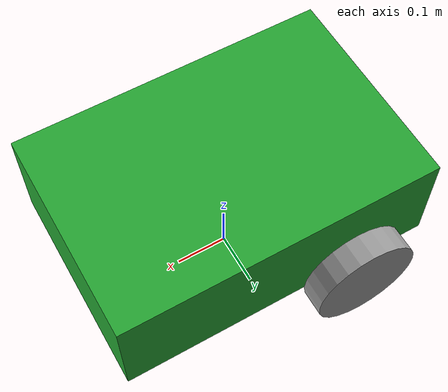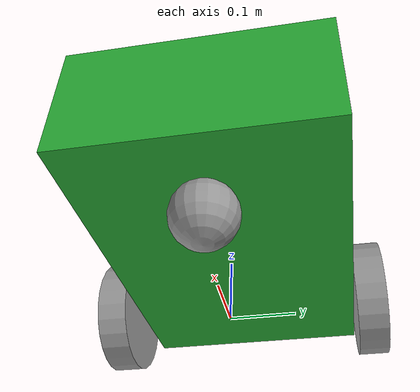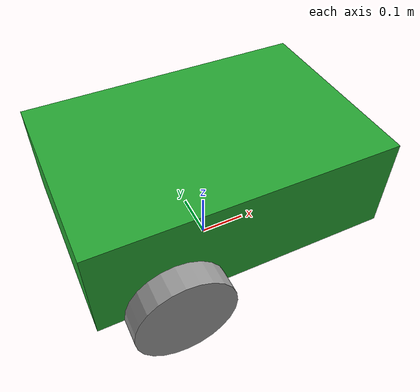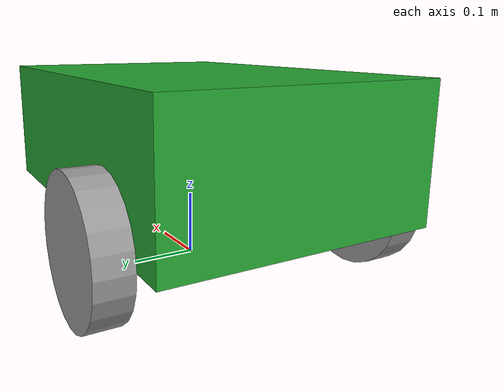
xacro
<?xml version="1.0"?>
<robot name="my_robot" xmlns:xacro="http://www.ros.org/wiki/xacro">

    <xacro:include filename="$(find my_robot_description)/urdf/common_properties.xacro" />
    <xacro:include filename="$(find my_robot_description)/urdf/mobile_base.xacro" />
    <xacro:include filename="$(find my_robot_description)/urdf/gazebo.xacro" />

</robot>

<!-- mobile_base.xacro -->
<robot xmlns:xacro="http://www.ros.org/wiki/xacro">

    <xacro:property name="base_length" value="0.6" />
    <xacro:property name="base_width" value="0.4" />
    <xacro:property name="base_height" value="0.2" />
    <xacro:property name="wheel_radius" value="0.1" />
    <xacro:property name="wheel_length" value="0.05" />

    <link name="base_footprint">

    <visual>
        <geometry>
            <box size="0.001 0.001 0.001"/>
        </geometry>
        <material name="gray"/>
    </visual>

    <collision>
        <geometry>
            <box size="0.001 0.001 0.001"/>
        </geometry>
    </collision>

    <inertial>
        <mass value="0.0001"/>
        <origin xyz="0 0 0" rpy="0 0 0"/>
        <inertia
            ixx="1e-7"
            ixy="0.0"
            ixz="0.0"
            iyy="1e-7"
            iyz="0.0"
            izz="1e-7"/>
    </inertial>

</link>

    <link name="base_link">
        <visual>
            <geometry>
                <box size="${base_length} ${base_width} ${base_height}" />
            </geometry>
            <origin xyz="0 0 ${base_height / 2.0}" rpy="0 0 0" />
            <material name="green" />
        </visual>
        <collision>
            <geometry>
                <box size="${base_length} ${base_width} ${base_height}" />
            </geometry>
            <origin xyz="0 0 ${base_height / 2.0}" rpy="0 0 0" />
        </collision>
        <xacro:box_inertia m="5.0" x="${base_length}" y="${base_width}" z="${base_height}"
                           o_xyz="0 0 ${base_height / 2.0}" o_rpy="0 0 0" />
    </link>

    <xacro:macro name="wheel_link" params="prefix">
        <link name="${prefix}_wheel_link">
            <visual>
                <geometry>
                    <cylinder radius="${wheel_radius}" length="${wheel_length}" />
                </geometry>
                <origin xyz="0 0 0" rpy="${pi / 2.0} 0 0" />
                <material name="gray" />
            </visual>
            <collision>
                <geometry>
                    <sphere radius="${wheel_radius}" />
                </geometry>
                <origin xyz="0 0 0" rpy="0 0 0" />
            </collision>
            <xacro:cylinder_inertia m="1.0" r="${wheel_radius}" l="${wheel_length}"
                                    o_xyz="0 0 0" o_rpy="${pi / 2.0} 0 0" />
        </link>
    </xacro:macro>

    <xacro:wheel_link prefix="right" />
    <xacro:wheel_link prefix="left" />

    <link name="caster_wheel_link">
        <visual>
            <geometry>
                <sphere radius="${wheel_radius / 2.0}" />
            </geometry>
            <origin xyz="0 0 0" rpy="0 0 0" />
            <material name="gray" />
        </visual>
        <collision>
            <geometry>
                <sphere radius="${wheel_radius / 2.0}" />
            </geometry>
            <origin xyz="0 0 0" rpy="0 0 0" />
        </collision>
        <xacro:sphere_inertia m="0.5" r="${wheel_radius / 2.0}"
                              o_xyz="0 0 0" o_rpy="0 0 0" />
    </link>

    <joint name="base_joint" type="fixed">
        <parent link="base_footprint" />
        <child link="base_link" />
        <origin xyz="0 0 ${wheel_radius}" rpy="0 0 0" />
    </joint>

    <joint name="base_right_wheel_joint" type="continuous">
        <parent link="base_link" />
        <child link="right_wheel_link" />
        <origin xyz="${-base_length / 4.0} ${-(base_width + wheel_length) / 2.0} 0" rpy="0 0 0" />
        <axis xyz="0 1 0" />
    </joint>

    <joint name="base_left_wheel_joint" type="continuous">
        <parent link="base_link" />
        <child link="left_wheel_link" />
        <origin xyz="${-base_length / 4.0} ${(base_width + wheel_length) / 2.0} 0" rpy="0 0 0" />
        <axis xyz="0 1 0" />
    </joint>

    <joint name="base_caster_wheel_joint" type="fixed">
        <parent link="base_link" />
        <child link="caster_wheel_link" />
        <origin xyz="${base_length / 3.0} 0 ${-wheel_radius / 2.0}" rpy="0 0 0" />
    </joint>

</robot>
